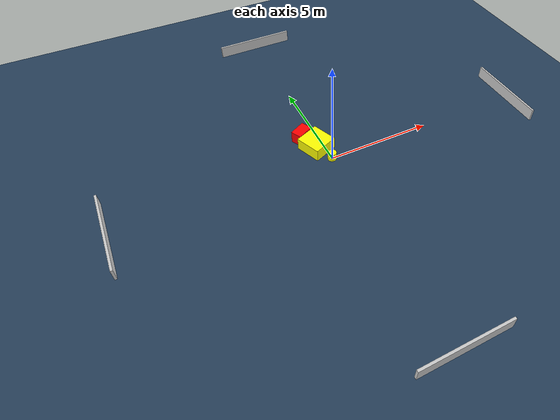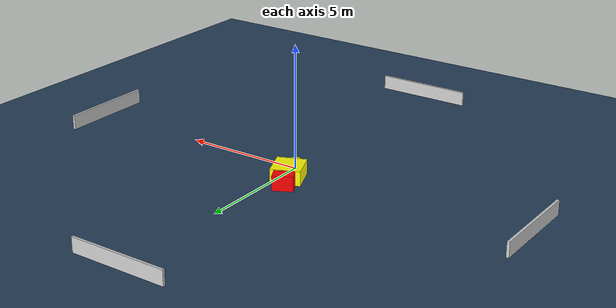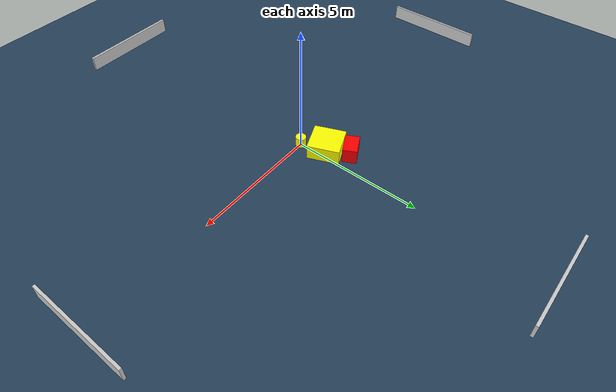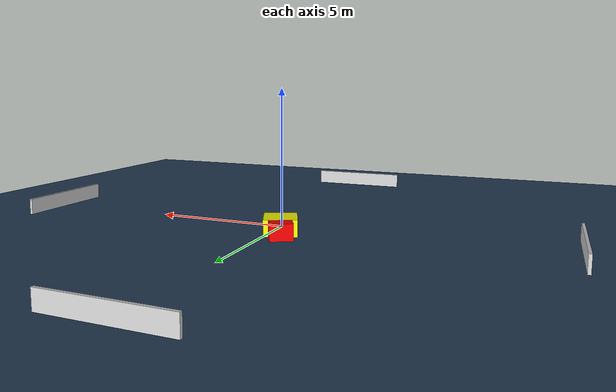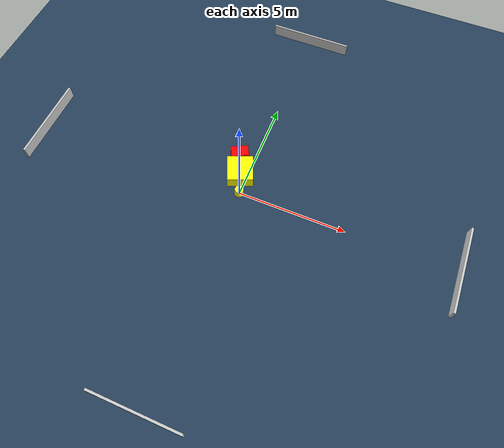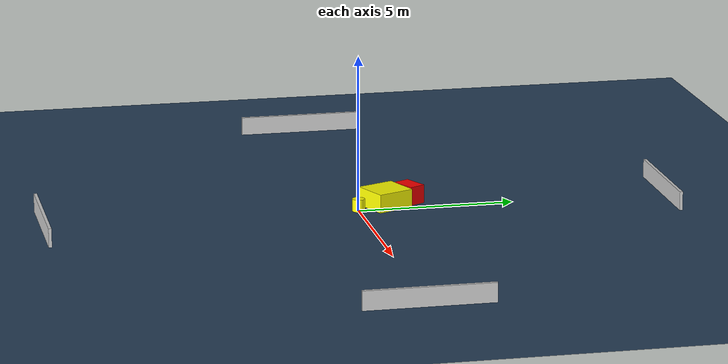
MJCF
<?xml version="1.0" ?>
<mujoco model="generated_environment">
  <option timestep="0.01" integrator="RK4" cone="elliptic"/>
  <default>
    <geom density="1"/>
  </default>
  <asset>
    <texture builtin="gradient" height="3072" name="skybox" rgb1="0.3 0.5 0.7" rgb2="0 0 0" type="skybox" width="512"/>
    <texture builtin="checker" height="300" name="groundplane" rgb1="0.2 0.3 0.4" rgb2="0.1 0.2 0.3" type="2d" width="300"/>
    <material name="groundplane" reflectance="0.2" texrepeat="5 5" texture="groundplane"/>
  </asset>
  <worldbody>
    <light dir="0 0 -1" directional="true" pos="0 0 1.5"/>
    <geom condim="3" friction="0.5 0.005 0.001" material="groundplane" name="floor" pos="0 0 0" size="0 0 0.05" type="plane"/>
    <body name="walls">
      <geom name="wall_1" condim="4" pos="-10.0 0.0 0.3" rgba="0.800000011920929 0.800000011920929 0.800000011920929 1.0" size="0.05 2.0 0.3" type="box"/>
      <geom name="wall_2" condim="4" pos="10.0 0.0 0.3" rgba="0.800000011920929 0.800000011920929 0.800000011920929 1.0" size="0.05 2.0 0.3" type="box"/>
      <geom name="wall_3" condim="4" pos="0.0 -10.0 0.3" rgba="0.800000011920929 0.800000011920929 0.800000011920929 1.0" size="2.0 0.05 0.3" type="box"/>
      <geom name="wall_4" condim="4" pos="0.0 10.0 0.3" rgba="0.800000011920929 0.800000011920929 0.800000011920929 1.0" size="2.0 0.05 0.3" type="box"/>
    </body>
    <body name="robot">
      <joint name="joint_x" type="slide" pos="0 0 0" axis="1 0 0"/>
      <joint name="joint_y" type="slide" pos="0 0 0" axis="0 1 0"/>
      <geom name="robot" type="cylinder" pos="0.0 0.0 0.2" size="0.2 0.2 0.0" mass="5.0" friction="1.0 0.005 0.0001" condim="4" rgba="1.0 1.0 0.0 1.0"/>
    </body>
    <body name="obstacle_1_movable">
      <geom name="obstacle_1_movable" condim="4" pos="-0.34927915101964463 0.9525579678969186 0.3" euler="0 0 202.4844348802963" friction="0.0 0.005 0.001" rgba="1.0 1.0 0.0 1.0" size="0.590178099256564 0.6145576059714071 0.3" type="box" mass="0.1"/>
      <joint type="free"/>
    </body>
    <body name="obstacle_2_static">
      <geom name="obstacle_2_static" condim="4" pos="-0.717501506300648 1.8003597878436992 0.3" euler="0 0 117.49133355593092" friction="0.0 0.005 0.001" rgba="1.0 0.0 0.0 1.0" size="0.271994993337792 0.40971565470744287 0.3" type="box"/>
    </body>
  </worldbody>
  <actuator>
    <motor name="actuator_x" joint="joint_x" gear="1" ctrlrange="-1 1"/>
    <motor name="actuator_y" joint="joint_y" gear="1" ctrlrange="-1 1"/>
  </actuator>
</mujoco>
